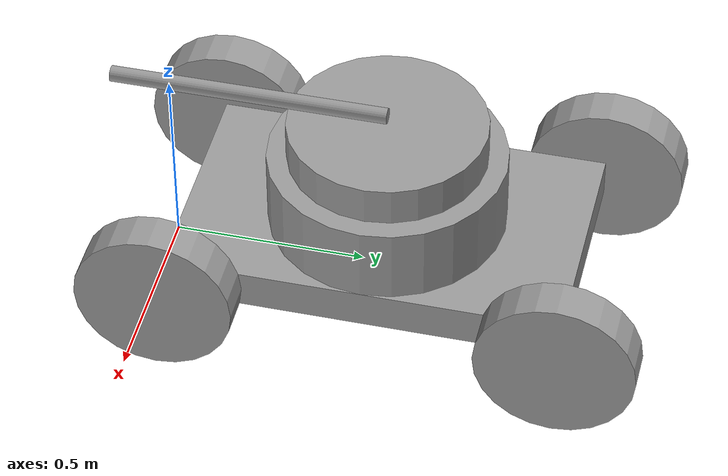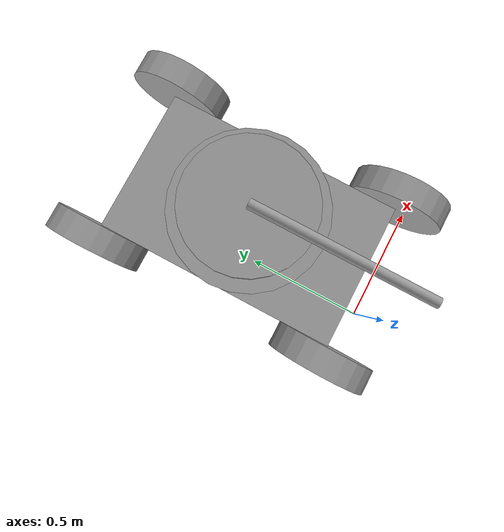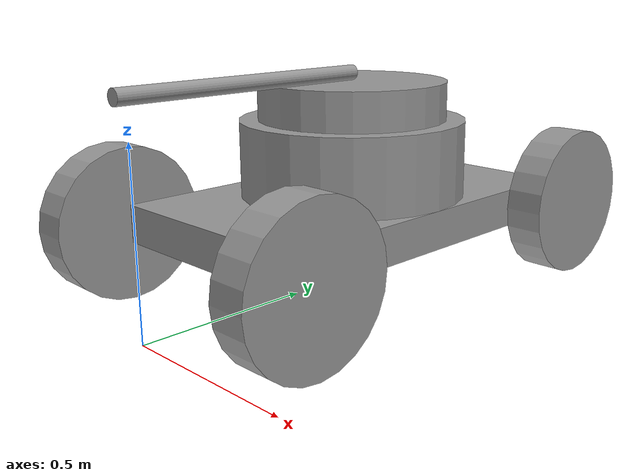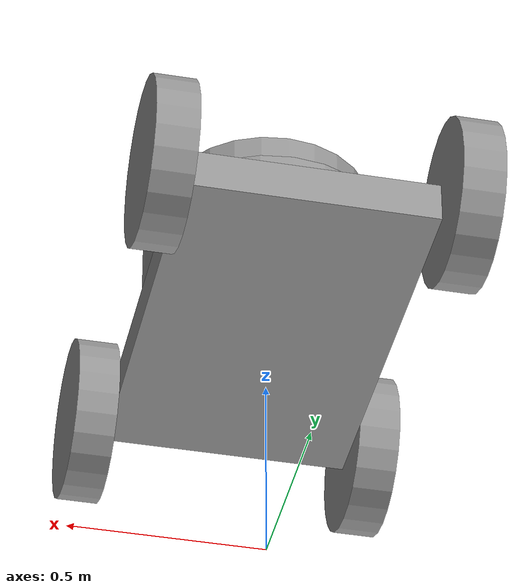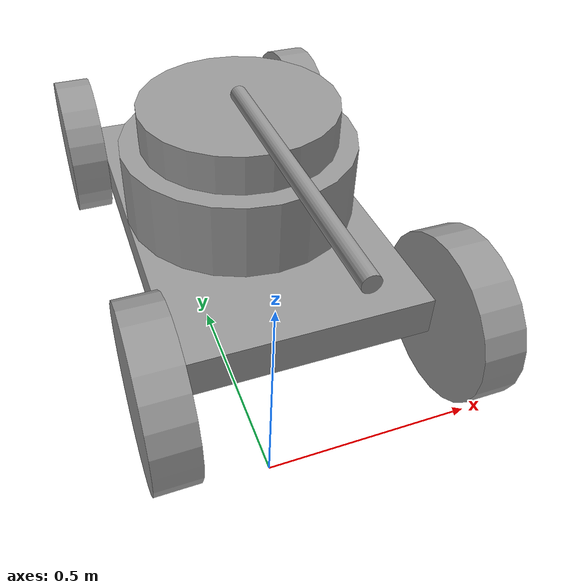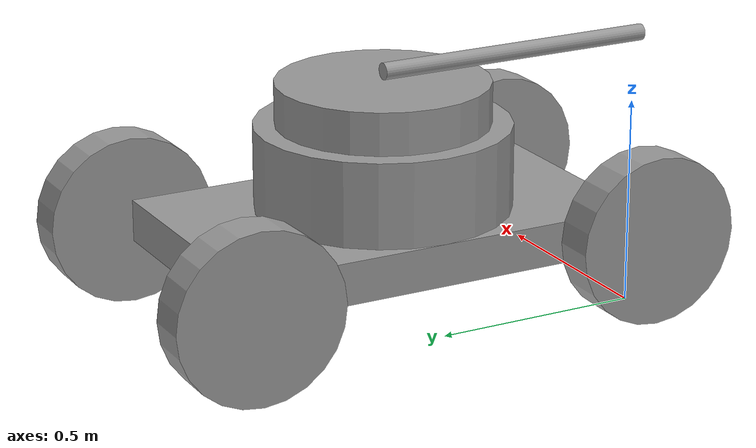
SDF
<?xml version='1.0'?>
<sdf version='1.7'>
  <model name='TankRobot'>
    <link name='link_0'>
      <inertial>
        <mass>1</mass>
        <inertia>
          <ixx>0.166667</ixx>
          <ixy>0</ixy>
          <ixz>0</ixz>
          <iyy>0.166667</iyy>
          <iyz>0</iyz>
          <izz>0.166667</izz>
        </inertia>
        <pose>0 0 0 0 -0 0</pose>
      </inertial>
      <pose>0.126589 0.595564 0.053123 0 -0 0</pose>
      <gravity>1</gravity>
      <self_collide>0</self_collide>
      <kinematic>0</kinematic>
      <enable_wind>0</enable_wind>
      <visual name='visual'>
        <pose>0 0 0.2 0 -0 0</pose>
        <geometry>
          <box>
            <size>0.6 1 0.1</size>
          </box>
        </geometry>
        <material>
          <lighting>1</lighting>
          <script>
            <uri>file://media/materials/scripts/gazebo.material</uri>
            <name>Gazebo/Grey</name>
          </script>
          <shader type='pixel'>
            <normal_map>__default__</normal_map>
          </shader>
          <ambient>0.3 0.3 0.3 1</ambient>
          <diffuse>0.7 0.7 0.7 1</diffuse>
          <specular>0.01 0.01 0.01 1</specular>
          <emissive>0 0 0 1</emissive>
        </material>
        <transparency>0</transparency>
        <cast_shadows>1</cast_shadows>
      </visual>
      <collision name='collision'>
        <laser_retro>0</laser_retro>
        <max_contacts>10</max_contacts>
        <pose>0 0 0.2 0 -0 0</pose>
        <geometry>
          <box>
            <size>0.6 1 0.1</size>
          </box>
        </geometry>
        <surface>
          <friction>
            <ode>
              <mu>1</mu>
              <mu2>1</mu2>
              <fdir1>0 0 0</fdir1>
              <slip1>0</slip1>
              <slip2>0</slip2>
            </ode>
            <torsional>
              <coefficient>1</coefficient>
              <patch_radius>0</patch_radius>
              <surface_radius>0</surface_radius>
              <use_patch_radius>1</use_patch_radius>
              <ode>
                <slip>0</slip>
              </ode>
            </torsional>
          </friction>
          <bounce>
            <restitution_coefficient>0</restitution_coefficient>
            <threshold>1e+06</threshold>
          </bounce>
          <contact>
            <collide_without_contact>0</collide_without_contact>
            <collide_without_contact_bitmask>1</collide_without_contact_bitmask>
            <collide_bitmask>1</collide_bitmask>
            <ode>
              <soft_cfm>0</soft_cfm>
              <soft_erp>0.2</soft_erp>
              <kp>1e+13</kp>
              <kd>1</kd>
              <max_vel>0.01</max_vel>
              <min_depth>0</min_depth>
            </ode>
            <bullet>
              <split_impulse>1</split_impulse>
              <split_impulse_penetration_threshold>-0.01</split_impulse_penetration_threshold>
              <soft_cfm>0</soft_cfm>
              <soft_erp>0.2</soft_erp>
              <kp>1e+13</kp>
              <kd>1</kd>
            </bullet>
          </contact>
        </surface>
      </collision>
    </link>
    <link name='link_1'>
      <inertial>
        <mass>1</mass>
        <inertia>
          <ixx>0.145833</ixx>
          <ixy>0</ixy>
          <ixz>0</ixz>
          <iyy>0.145833</iyy>
          <iyz>0</iyz>
          <izz>0.125</izz>
        </inertia>
        <pose>0 0 0.2 1.5707 0 1.5707</pose>
      </inertial>
      <pose>-0.223411 1.09556 0.053123 0 -0 0</pose>
      <gravity>1</gravity>
      <self_collide>0</self_collide>
      <kinematic>0</kinematic>
      <enable_wind>0</enable_wind>
      <visual name='visual'>
        <pose>0 0 0.2 1.5707 0 1.5707</pose>
        <geometry>
          <cylinder>
            <radius>0.2</radius>
            <length>0.1</length>
          </cylinder>
        </geometry>
        <material>
          <lighting>1</lighting>
          <script>
            <uri>file://media/materials/scripts/gazebo.material</uri>
            <name>Gazebo/Grey</name>
          </script>
          <shader type='pixel'>
            <normal_map>__default__</normal_map>
          </shader>
          <ambient>0.3 0.3 0.3 1</ambient>
          <diffuse>0.7 0.7 0.7 1</diffuse>
          <specular>0.01 0.01 0.01 1</specular>
          <emissive>0 0 0 1</emissive>
        </material>
        <transparency>0</transparency>
        <cast_shadows>1</cast_shadows>
      </visual>
      <collision name='collision'>
        <laser_retro>0</laser_retro>
        <max_contacts>10</max_contacts>
        <pose>0 0 0.2 1.5707 0 1.5707</pose>
        <geometry>
          <cylinder>
            <radius>0.2</radius>
            <length>0.1</length>
          </cylinder>
        </geometry>
        <surface>
          <friction>
            <ode>
              <mu>1</mu>
              <mu2>1</mu2>
              <fdir1>0 0 0</fdir1>
              <slip1>0</slip1>
              <slip2>0</slip2>
            </ode>
            <torsional>
              <coefficient>1</coefficient>
              <patch_radius>0</patch_radius>
              <surface_radius>0</surface_radius>
              <use_patch_radius>1</use_patch_radius>
              <ode>
                <slip>0</slip>
              </ode>
            </torsional>
          </friction>
          <bounce>
            <restitution_coefficient>0</restitution_coefficient>
            <threshold>1e+06</threshold>
          </bounce>
          <contact>
            <collide_without_contact>0</collide_without_contact>
            <collide_without_contact_bitmask>1</collide_without_contact_bitmask>
            <collide_bitmask>1</collide_bitmask>
            <ode>
              <soft_cfm>0</soft_cfm>
              <soft_erp>0.2</soft_erp>
              <kp>1e+13</kp>
              <kd>1</kd>
              <max_vel>0.01</max_vel>
              <min_depth>0</min_depth>
            </ode>
            <bullet>
              <split_impulse>1</split_impulse>
              <split_impulse_penetration_threshold>-0.01</split_impulse_penetration_threshold>
              <soft_cfm>0</soft_cfm>
              <soft_erp>0.2</soft_erp>
              <kp>1e+13</kp>
              <kd>1</kd>
            </bullet>
          </contact>
        </surface>
      </collision>
    </link>
    <link name='link_1_clone'>
      <inertial>
        <mass>1</mass>
        <inertia>
          <ixx>0.145833</ixx>
          <ixy>0</ixy>
          <ixz>0</ixz>
          <iyy>0.145833</iyy>
          <iyz>0</iyz>
          <izz>0.125</izz>
        </inertia>
        <pose>0 0 0.2 1.5707 0 1.5707</pose>
      </inertial>
      <pose>0.476589 1.09556 0.053123 0 -0 0</pose>
      <gravity>1</gravity>
      <self_collide>0</self_collide>
      <kinematic>0</kinematic>
      <enable_wind>0</enable_wind>
      <visual name='visual'>
        <pose>0 0 0.2 1.5707 0 1.5707</pose>
        <geometry>
          <cylinder>
            <radius>0.2</radius>
            <length>0.1</length>
          </cylinder>
        </geometry>
        <material>
          <lighting>1</lighting>
          <script>
            <uri>file://media/materials/scripts/gazebo.material</uri>
            <name>Gazebo/Grey</name>
          </script>
          <shader type='pixel'>
            <normal_map>__default__</normal_map>
          </shader>
          <ambient>0.3 0.3 0.3 1</ambient>
          <diffuse>0.7 0.7 0.7 1</diffuse>
          <specular>0.01 0.01 0.01 1</specular>
          <emissive>0 0 0 1</emissive>
        </material>
        <transparency>0</transparency>
        <cast_shadows>1</cast_shadows>
      </visual>
      <collision name='collision'>
        <laser_retro>0</laser_retro>
        <max_contacts>10</max_contacts>
        <pose>0 0 0.2 1.5707 0 1.5707</pose>
        <geometry>
          <cylinder>
            <radius>0.2</radius>
            <length>0.1</length>
          </cylinder>
        </geometry>
        <surface>
          <friction>
            <ode>
              <mu>1</mu>
              <mu2>1</mu2>
              <fdir1>0 0 0</fdir1>
              <slip1>0</slip1>
              <slip2>0</slip2>
            </ode>
            <torsional>
              <coefficient>1</coefficient>
              <patch_radius>0</patch_radius>
              <surface_radius>0</surface_radius>
              <use_patch_radius>1</use_patch_radius>
              <ode>
                <slip>0</slip>
              </ode>
            </torsional>
          </friction>
          <bounce>
            <restitution_coefficient>0</restitution_coefficient>
            <threshold>1e+06</threshold>
          </bounce>
          <contact>
            <collide_without_contact>0</collide_without_contact>
            <collide_without_contact_bitmask>1</collide_without_contact_bitmask>
            <collide_bitmask>1</collide_bitmask>
            <ode>
              <soft_cfm>0</soft_cfm>
              <soft_erp>0.2</soft_erp>
              <kp>1e+13</kp>
              <kd>1</kd>
              <max_vel>0.01</max_vel>
              <min_depth>0</min_depth>
            </ode>
            <bullet>
              <split_impulse>1</split_impulse>
              <split_impulse_penetration_threshold>-0.01</split_impulse_penetration_threshold>
              <soft_cfm>0</soft_cfm>
              <soft_erp>0.2</soft_erp>
              <kp>1e+13</kp>
              <kd>1</kd>
            </bullet>
          </contact>
        </surface>
      </collision>
    </link>
    <link name='link_1_clone_clone'>
      <inertial>
        <mass>1</mass>
        <inertia>
          <ixx>0.145833</ixx>
          <ixy>0</ixy>
          <ixz>0</ixz>
          <iyy>0.145833</iyy>
          <iyz>0</iyz>
          <izz>0.125</izz>
        </inertia>
        <pose>0 0 0.2 1.5707 0 1.5707</pose>
      </inertial>
      <pose>-0.223411 0.095564 0.053123 0 -0 0</pose>
      <gravity>1</gravity>
      <self_collide>0</self_collide>
      <kinematic>0</kinematic>
      <enable_wind>0</enable_wind>
      <visual name='visual'>
        <pose>0 0 0.2 1.5707 0 1.5707</pose>
        <geometry>
          <cylinder>
            <radius>0.2</radius>
            <length>0.1</length>
          </cylinder>
        </geometry>
        <material>
          <lighting>1</lighting>
          <script>
            <uri>file://media/materials/scripts/gazebo.material</uri>
            <name>Gazebo/Grey</name>
          </script>
          <shader type='pixel'>
            <normal_map>__default__</normal_map>
          </shader>
          <ambient>0.3 0.3 0.3 1</ambient>
          <diffuse>0.7 0.7 0.7 1</diffuse>
          <specular>0.01 0.01 0.01 1</specular>
          <emissive>0 0 0 1</emissive>
        </material>
        <transparency>0</transparency>
        <cast_shadows>1</cast_shadows>
      </visual>
      <collision name='collision'>
        <laser_retro>0</laser_retro>
        <max_contacts>10</max_contacts>
        <pose>0 0 0.2 1.5707 0 1.5707</pose>
        <geometry>
          <cylinder>
            <radius>0.2</radius>
            <length>0.1</length>
          </cylinder>
        </geometry>
        <surface>
          <friction>
            <ode>
              <mu>1</mu>
              <mu2>1</mu2>
              <fdir1>0 0 0</fdir1>
              <slip1>0</slip1>
              <slip2>0</slip2>
            </ode>
            <torsional>
              <coefficient>1</coefficient>
              <patch_radius>0</patch_radius>
              <surface_radius>0</surface_radius>
              <use_patch_radius>1</use_patch_radius>
              <ode>
                <slip>0</slip>
              </ode>
            </torsional>
          </friction>
          <bounce>
            <restitution_coefficient>0</restitution_coefficient>
            <threshold>1e+06</threshold>
          </bounce>
          <contact>
            <collide_without_contact>0</collide_without_contact>
            <collide_without_contact_bitmask>1</collide_without_contact_bitmask>
            <collide_bitmask>1</collide_bitmask>
            <ode>
              <soft_cfm>0</soft_cfm>
              <soft_erp>0.2</soft_erp>
              <kp>1e+13</kp>
              <kd>1</kd>
              <max_vel>0.01</max_vel>
              <min_depth>0</min_depth>
            </ode>
            <bullet>
              <split_impulse>1</split_impulse>
              <split_impulse_penetration_threshold>-0.01</split_impulse_penetration_threshold>
              <soft_cfm>0</soft_cfm>
              <soft_erp>0.2</soft_erp>
              <kp>1e+13</kp>
              <kd>1</kd>
            </bullet>
          </contact>
        </surface>
      </collision>
    </link>
    <link name='link_1_clone_clone_clone'>
      <inertial>
        <mass>1</mass>
        <inertia>
          <ixx>0.145833</ixx>
          <ixy>0</ixy>
          <ixz>0</ixz>
          <iyy>0.145833</iyy>
          <iyz>0</iyz>
          <izz>0.125</izz>
        </inertia>
        <pose>0 0 0.2 1.5707 0 1.5707</pose>
      </inertial>
      <pose>0.476589 0.095564 0.053123 0 -0 0</pose>
      <gravity>1</gravity>
      <self_collide>0</self_collide>
      <kinematic>0</kinematic>
      <enable_wind>0</enable_wind>
      <visual name='visual'>
        <pose>0 0 0.2 1.5707 0 1.5707</pose>
        <geometry>
          <cylinder>
            <radius>0.2</radius>
            <length>0.1</length>
          </cylinder>
        </geometry>
        <material>
          <lighting>1</lighting>
          <script>
            <uri>file://media/materials/scripts/gazebo.material</uri>
            <name>Gazebo/Grey</name>
          </script>
          <shader type='pixel'>
            <normal_map>__default__</normal_map>
          </shader>
          <ambient>0.3 0.3 0.3 1</ambient>
          <diffuse>0.7 0.7 0.7 1</diffuse>
          <specular>0.01 0.01 0.01 1</specular>
          <emissive>0 0 0 1</emissive>
        </material>
        <transparency>0</transparency>
        <cast_shadows>1</cast_shadows>
      </visual>
      <collision name='collision'>
        <laser_retro>0</laser_retro>
        <max_contacts>10</max_contacts>
        <pose>0 0 0.2 1.5707 0 1.5707</pose>
        <geometry>
          <cylinder>
            <radius>0.2</radius>
            <length>0.1</length>
          </cylinder>
        </geometry>
        <surface>
          <friction>
            <ode>
              <mu>1</mu>
              <mu2>1</mu2>
              <fdir1>0 0 0</fdir1>
              <slip1>0</slip1>
              <slip2>0</slip2>
            </ode>
            <torsional>
              <coefficient>1</coefficient>
              <patch_radius>0</patch_radius>
              <surface_radius>0</surface_radius>
              <use_patch_radius>1</use_patch_radius>
              <ode>
                <slip>0</slip>
              </ode>
            </torsional>
          </friction>
          <bounce>
            <restitution_coefficient>0</restitution_coefficient>
            <threshold>1e+06</threshold>
          </bounce>
          <contact>
            <collide_without_contact>0</collide_without_contact>
            <collide_without_contact_bitmask>1</collide_without_contact_bitmask>
            <collide_bitmask>1</collide_bitmask>
            <ode>
              <soft_cfm>0</soft_cfm>
              <soft_erp>0.2</soft_erp>
              <kp>1e+13</kp>
              <kd>1</kd>
              <max_vel>0.01</max_vel>
              <min_depth>0</min_depth>
            </ode>
            <bullet>
              <split_impulse>1</split_impulse>
              <split_impulse_penetration_threshold>-0.01</split_impulse_penetration_threshold>
              <soft_cfm>0</soft_cfm>
              <soft_erp>0.2</soft_erp>
              <kp>1e+13</kp>
              <kd>1</kd>
            </bullet>
          </contact>
        </surface>
      </collision>
    </link>
    <link name='link_3'>
      <inertial>
        <mass>1</mass>
        <inertia>
          <ixx>0.145833</ixx>
          <ixy>0</ixy>
          <ixz>0</ixz>
          <iyy>0.145833</iyy>
          <iyz>0</iyz>
          <izz>0.125</izz>
        </inertia>
        <pose>0 0 0 0 -0 0</pose>
      </inertial>
      <pose>0.126589 0.595564 0.403123 0 -0 0</pose>
      <gravity>1</gravity>
      <self_collide>0</self_collide>
      <kinematic>0</kinematic>
      <enable_wind>0</enable_wind>
      <visual name='visual'>
        <pose>0 0 0 0 -0 0</pose>
        <geometry>
          <cylinder>
            <radius>0.3</radius>
            <length>0.2</length>
          </cylinder>
        </geometry>
        <material>
          <lighting>1</lighting>
          <script>
            <uri>file://media/materials/scripts/gazebo.material</uri>
            <name>Gazebo/Grey</name>
          </script>
          <shader type='pixel'>
            <normal_map>__default__</normal_map>
          </shader>
          <ambient>0.3 0.3 0.3 1</ambient>
          <diffuse>0.7 0.7 0.7 1</diffuse>
          <specular>0.01 0.01 0.01 1</specular>
          <emissive>0 0 0 1</emissive>
        </material>
        <transparency>0</transparency>
        <cast_shadows>1</cast_shadows>
      </visual>
      <collision name='collision'>
        <laser_retro>0</laser_retro>
        <max_contacts>10</max_contacts>
        <pose>0 0 0 0 -0 0</pose>
        <geometry>
          <cylinder>
            <radius>0.3</radius>
            <length>0.2</length>
          </cylinder>
        </geometry>
        <surface>
          <friction>
            <ode>
              <mu>1</mu>
              <mu2>1</mu2>
              <fdir1>0 0 0</fdir1>
              <slip1>0</slip1>
              <slip2>0</slip2>
            </ode>
            <torsional>
              <coefficient>1</coefficient>
              <patch_radius>0</patch_radius>
              <surface_radius>0</surface_radius>
              <use_patch_radius>1</use_patch_radius>
              <ode>
                <slip>0</slip>
              </ode>
            </torsional>
          </friction>
          <bounce>
            <restitution_coefficient>0</restitution_coefficient>
            <threshold>1e+06</threshold>
          </bounce>
          <contact>
            <collide_without_contact>0</collide_without_contact>
            <collide_without_contact_bitmask>1</collide_without_contact_bitmask>
            <collide_bitmask>1</collide_bitmask>
            <ode>
              <soft_cfm>0</soft_cfm>
              <soft_erp>0.2</soft_erp>
              <kp>1e+13</kp>
              <kd>1</kd>
              <max_vel>0.01</max_vel>
              <min_depth>0</min_depth>
            </ode>
            <bullet>
              <split_impulse>1</split_impulse>
              <split_impulse_penetration_threshold>-0.01</split_impulse_penetration_threshold>
              <soft_cfm>0</soft_cfm>
              <soft_erp>0.2</soft_erp>
              <kp>1e+13</kp>
              <kd>1</kd>
            </bullet>
          </contact>
        </surface>
      </collision>
    </link>
    <link name='link_4'>
      <inertial>
        <mass>1</mass>
        <inertia>
          <ixx>0.145833</ixx>
          <ixy>0</ixy>
          <ixz>0</ixz>
          <iyy>0.145833</iyy>
          <iyz>0</iyz>
          <izz>0.125</izz>
        </inertia>
        <pose>0 0 0 0 -0 0</pose>
      </inertial>
      <pose>0.126589 0.595564 0.553123 0 -0 0</pose>
      <gravity>1</gravity>
      <self_collide>0</self_collide>
      <kinematic>0</kinematic>
      <enable_wind>0</enable_wind>
      <visual name='visual'>
        <pose>0 0 0 0 -0 0</pose>
        <geometry>
          <cylinder>
            <radius>0.25</radius>
            <length>0.1</length>
          </cylinder>
        </geometry>
        <material>
          <lighting>1</lighting>
          <script>
            <uri>file://media/materials/scripts/gazebo.material</uri>
            <name>Gazebo/Grey</name>
          </script>
          <shader type='pixel'>
            <normal_map>__default__</normal_map>
          </shader>
          <ambient>0.3 0.3 0.3 1</ambient>
          <diffuse>0.7 0.7 0.7 1</diffuse>
          <specular>0.01 0.01 0.01 1</specular>
          <emissive>0 0 0 1</emissive>
        </material>
        <transparency>0</transparency>
        <cast_shadows>1</cast_shadows>
      </visual>
      <collision name='collision'>
        <laser_retro>0</laser_retro>
        <max_contacts>10</max_contacts>
        <pose>0 0 0 0 -0 0</pose>
        <geometry>
          <cylinder>
            <radius>0.25</radius>
            <length>0.1</length>
          </cylinder>
        </geometry>
        <surface>
          <friction>
            <ode>
              <mu>1</mu>
              <mu2>1</mu2>
              <fdir1>0 0 0</fdir1>
              <slip1>0</slip1>
              <slip2>0</slip2>
            </ode>
            <torsional>
              <coefficient>1</coefficient>
              <patch_radius>0</patch_radius>
              <surface_radius>0</surface_radius>
              <use_patch_radius>1</use_patch_radius>
              <ode>
                <slip>0</slip>
              </ode>
            </torsional>
          </friction>
          <bounce>
            <restitution_coefficient>0</restitution_coefficient>
            <threshold>1e+06</threshold>
          </bounce>
          <contact>
            <collide_without_contact>0</collide_without_contact>
            <collide_without_contact_bitmask>1</collide_without_contact_bitmask>
            <collide_bitmask>1</collide_bitmask>
            <ode>
              <soft_cfm>0</soft_cfm>
              <soft_erp>0.2</soft_erp>
              <kp>1e+13</kp>
              <kd>1</kd>
              <max_vel>0.01</max_vel>
              <min_depth>0</min_depth>
            </ode>
            <bullet>
              <split_impulse>1</split_impulse>
              <split_impulse_penetration_threshold>-0.01</split_impulse_penetration_threshold>
              <soft_cfm>0</soft_cfm>
              <soft_erp>0.2</soft_erp>
              <kp>1e+13</kp>
              <kd>1</kd>
            </bullet>
          </contact>
        </surface>
      </collision>
    </link>
    <link name='link_5'>
      <inertial>
        <mass>1</mass>
        <inertia>
          <ixx>0.145833</ixx>
          <ixy>0</ixy>
          <ixz>0</ixz>
          <iyy>0.145833</iyy>
          <iyz>0</iyz>
          <izz>0.125</izz>
        </inertia>
        <pose>0 0 0 0 -0 0</pose>
      </inertial>
      <pose>0.126589 0.245564 0.623123 0 -0 0</pose>
      <gravity>1</gravity>
      <self_collide>0</self_collide>
      <kinematic>0</kinematic>
      <enable_wind>0</enable_wind>
      <visual name='visual'>
        <pose>0 0 0 1.5707 -0 0</pose>
        <geometry>
          <cylinder>
            <radius>0.02</radius>
            <length>0.7</length>
          </cylinder>
        </geometry>
        <material>
          <lighting>1</lighting>
          <script>
            <uri>file://media/materials/scripts/gazebo.material</uri>
            <name>Gazebo/Grey</name>
          </script>
          <shader type='pixel'>
            <normal_map>__default__</normal_map>
          </shader>
          <ambient>0.3 0.3 0.3 1</ambient>
          <diffuse>0.7 0.7 0.7 1</diffuse>
          <specular>0.01 0.01 0.01 1</specular>
          <emissive>0 0 0 1</emissive>
        </material>
        <transparency>0</transparency>
        <cast_shadows>1</cast_shadows>
      </visual>
      <collision name='collision'>
        <laser_retro>0</laser_retro>
        <max_contacts>10</max_contacts>
        <pose>0 0 0 1.5707 -0 0</pose>
        <geometry>
          <cylinder>
            <radius>0.02</radius>
            <length>0.7</length>
          </cylinder>
        </geometry>
        <surface>
          <friction>
            <ode>
              <mu>1</mu>
              <mu2>1</mu2>
              <fdir1>0 0 0</fdir1>
              <slip1>0</slip1>
              <slip2>0</slip2>
            </ode>
            <torsional>
              <coefficient>1</coefficient>
              <patch_radius>0</patch_radius>
              <surface_radius>0</surface_radius>
              <use_patch_radius>1</use_patch_radius>
              <ode>
                <slip>0</slip>
              </ode>
            </torsional>
          </friction>
          <bounce>
            <restitution_coefficient>0</restitution_coefficient>
            <threshold>1e+06</threshold>
          </bounce>
          <contact>
            <collide_without_contact>0</collide_without_contact>
            <collide_without_contact_bitmask>1</collide_without_contact_bitmask>
            <collide_bitmask>1</collide_bitmask>
            <ode>
              <soft_cfm>0</soft_cfm>
              <soft_erp>0.2</soft_erp>
              <kp>1e+13</kp>
              <kd>1</kd>
              <max_vel>0.01</max_vel>
              <min_depth>0</min_depth>
            </ode>
            <bullet>
              <split_impulse>1</split_impulse>
              <split_impulse_penetration_threshold>-0.01</split_impulse_penetration_threshold>
              <soft_cfm>0</soft_cfm>
              <soft_erp>0.2</soft_erp>
              <kp>1e+13</kp>
              <kd>1</kd>
            </bullet>
          </contact>
        </surface>
      </collision>
    </link>
    <joint name='link_0_JOINT_1' type='revolute'>
      <parent>link_0</parent>
      <child>link_1</child>
      <pose>0 0 0 0 -0 0</pose>
      <axis>
        <xyz>0 1 0</xyz>
        <limit>
          <lower>-1.79769e+308</lower>
          <upper>1.79769e+308</upper>
          <effort>-1</effort>
          <velocity>-1</velocity>
        </limit>
        <dynamics>
          <spring_reference>0</spring_reference>
          <spring_stiffness>0</spring_stiffness>
          <damping>0</damping>
          <friction>0</friction>
        </dynamics>
      </axis>
      <physics>
        <ode>
          <limit>
            <cfm>0</cfm>
            <erp>0.2</erp>
          </limit>
          <suspension>
            <cfm>0</cfm>
            <erp>0.2</erp>
          </suspension>
        </ode>
      </physics>
    </joint>
    <joint name='link_0_JOINT_2' type='revolute'>
      <parent>link_0</parent>
      <child>link_1_clone</child>
      <pose>0 0 0 0 -0 0</pose>
      <axis>
        <xyz>0 1 0</xyz>
        <limit>
          <lower>-1.79769e+308</lower>
          <upper>1.79769e+308</upper>
          <effort>-1</effort>
          <velocity>-1</velocity>
        </limit>
        <dynamics>
          <spring_reference>0</spring_reference>
          <spring_stiffness>0</spring_stiffness>
          <damping>0</damping>
          <friction>0</friction>
        </dynamics>
      </axis>
      <physics>
        <ode>
          <limit>
            <cfm>0</cfm>
            <erp>0.2</erp>
          </limit>
          <suspension>
            <cfm>0</cfm>
            <erp>0.2</erp>
          </suspension>
        </ode>
      </physics>
    </joint>
    <joint name='link_0_JOINT_3' type='revolute'>
      <parent>link_0</parent>
      <child>link_1_clone_clone</child>
      <pose>0 0 0 0 -0 0</pose>
      <axis>
        <xyz>0 1 0</xyz>
        <limit>
          <lower>-1.79769e+308</lower>
          <upper>1.79769e+308</upper>
          <effort>-1</effort>
          <velocity>-1</velocity>
        </limit>
        <dynamics>
          <spring_reference>0</spring_reference>
          <spring_stiffness>0</spring_stiffness>
          <damping>0</damping>
          <friction>0</friction>
        </dynamics>
      </axis>
      <physics>
        <ode>
          <limit>
            <cfm>0</cfm>
            <erp>0.2</erp>
          </limit>
          <suspension>
            <cfm>0</cfm>
            <erp>0.2</erp>
          </suspension>
        </ode>
      </physics>
    </joint>
    <joint name='link_0_JOINT_4' type='revolute'>
      <parent>link_0</parent>
      <child>link_1_clone_clone_clone</child>
      <pose>0 0 0 0 -0 0</pose>
      <axis>
        <xyz>1 0 0</xyz>
        <limit>
          <lower>-1.79769e+308</lower>
          <upper>1.79769e+308</upper>
          <effort>-1</effort>
          <velocity>-1</velocity>
        </limit>
        <dynamics>
          <spring_reference>0</spring_reference>
          <spring_stiffness>0</spring_stiffness>
          <damping>0</damping>
        </dynamics>
      </axis>
      <physics>
        <ode>
          <limit>
            <cfm>0</cfm>
            <erp>0.2</erp>
          </limit>
          <suspension>
            <cfm>0</cfm>
            <erp>0.2</erp>
          </suspension>
        </ode>
      </physics>
    </joint>
    <joint name='link_0_JOINT_5' type='fixed'>
      <parent>link_0</parent>
      <child>link_3</child>
      <pose>0 0 0 0 -0 0</pose>
      <physics>
        <ode>
          <limit>
            <cfm>0</cfm>
            <erp>0.2</erp>
          </limit>
          <suspension>
            <cfm>0</cfm>
            <erp>0.2</erp>
          </suspension>
        </ode>
      </physics>
    </joint>
    <joint name='link_3_JOINT_6' type='revolute'>
      <parent>link_3</parent>
      <child>link_4</child>
      <pose>0 0 0 0 -0 0</pose>
      <axis>
        <xyz>0 0 1</xyz>
        <limit>
          <lower>-1.79769e+308</lower>
          <upper>1.79769e+308</upper>
          <effort>-1</effort>
          <velocity>-1</velocity>
        </limit>
        <dynamics>
          <spring_reference>0</spring_reference>
          <spring_stiffness>0</spring_stiffness>
          <damping>0</damping>
        </dynamics>
      </axis>
      <physics>
        <ode>
          <limit>
            <cfm>0</cfm>
            <erp>0.2</erp>
          </limit>
          <suspension>
            <cfm>0</cfm>
            <erp>0.2</erp>
          </suspension>
        </ode>
      </physics>
    </joint>
    <joint name='link_4_JOINT_7' type='fixed'>
      <parent>link_4</parent>
      <child>link_5</child>
      <pose>0 0 0 0 -0 0</pose>
      <physics>
        <ode>
          <limit>
            <cfm>0</cfm>
            <erp>0.2</erp>
          </limit>
          <suspension>
            <cfm>0</cfm>
            <erp>0.2</erp>
          </suspension>
        </ode>
      </physics>
    </joint>
    <static>0</static>
    <allow_auto_disable>1</allow_auto_disable>
  </model>
</sdf>
